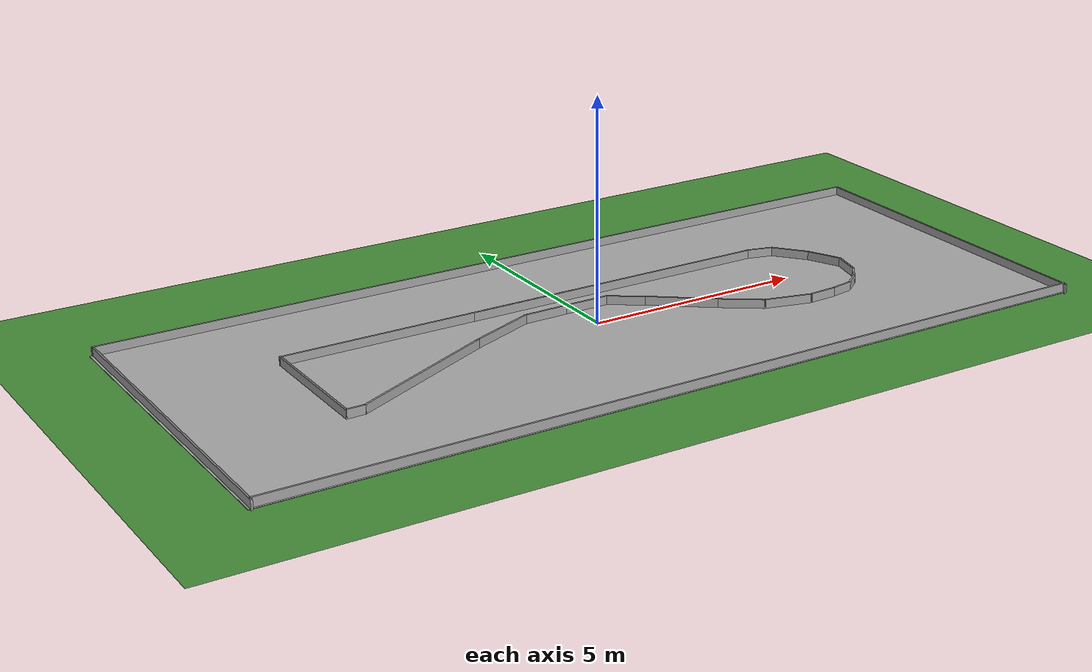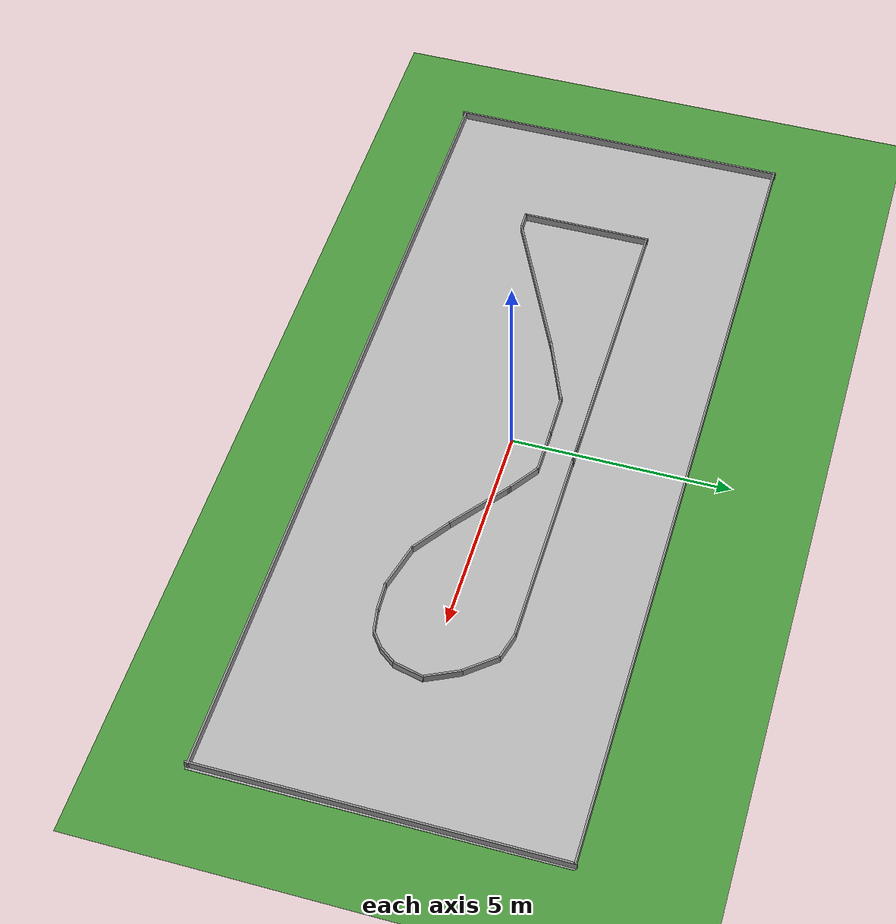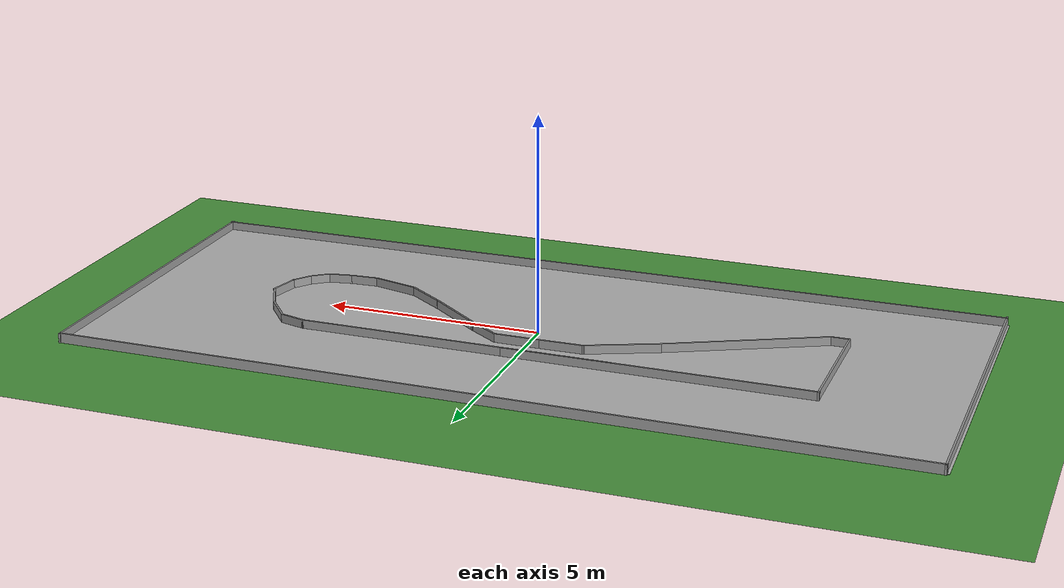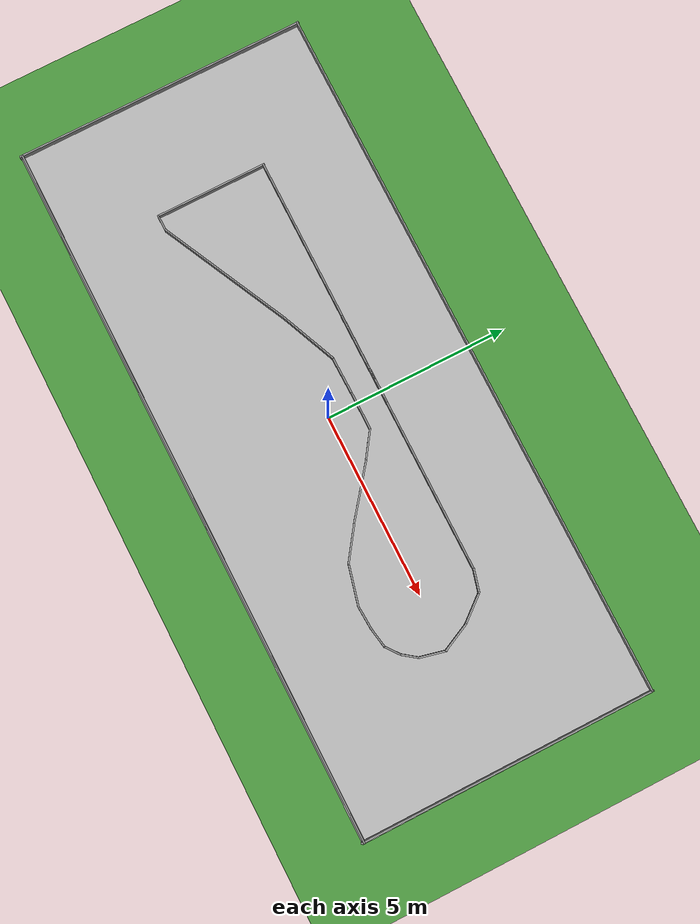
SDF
<sdf version="1.5">
 <world name="default">
  <light name="sun" type="directional">
   <cast_shadows>0</cast_shadows>
   <pose>0 0 10 0 -0 0</pose>
   <diffuse>0.8 0.8 0.8 1</diffuse>
   <specular>0.2 0.2 0.2 1</specular>
   <attenuation>
    <range>1000</range>
    <constant>0.9</constant>
    <linear>0.01</linear>
    <quadratic>0.001</quadratic>
   </attenuation>
   <direction>-0.5 0.1 -0.9</direction>
  </light>
  <scene>
   <sky><clouds><speed>1</speed></clouds></sky>
   <ambient>0.4 0.4 0.4 1</ambient>
   <background>0.7 0.7 0.7 1</background>
   <shadows>1</shadows>
  </scene>
  <physics name="default_physics" default="0" type="ode">
   <real_time_update_rate>1000</real_time_update_rate>
   <ode>
    <solver>
     <type>quick</type>
     <iters>70</iters>
     <sor>1.3</sor>
     <use_dynamic_moi_rescaling>0</use_dynamic_moi_rescaling>
    </solver>
    <constraints>
     <cfm>0</cfm>
     <erp>0.2</erp>
     <contact_max_correcting_vel>100</contact_max_correcting_vel>
     <contact_surface_layer>0.001</contact_surface_layer>
    </constraints>
   </ode>
   <max_step_size>0.001</max_step_size>
   <real_time_factor>1</real_time_factor>
  </physics>
  <scene><ambient>0.4 0.4 0.4 1</ambient><background>0.7 0.7 0.7 1</background><shadows>1</shadows></scene>
  <spherical_coordinates>
   <surface_model>EARTH_WGS84</surface_model>
   <latitude_deg>0</latitude_deg>
   <longitude_deg>0</longitude_deg>
   <elevation>0</elevation>
   <heading_deg>0</heading_deg>
  </spherical_coordinates>
  <model name="ground_grass">
   <static>1</static>
   <link name="ground_grass">
    <collision name="collision">
     <geometry><plane><normal>0 0 1</normal><size>50 50</size></plane></geometry>
     <surface><friction><ode><mu>100</mu><mu2>50</mu2></ode></friction></surface>
    </collision>
    <visual name="visual_ground">
     <cast_shadows>0</cast_shadows>
     <pose>0 0 0.005 0 -0 0</pose>
     <geometry><plane><normal>0 0 1</normal><size>50 50</size></plane></geometry>
     <material>
      <script>
       <uri>model://ground_grass/materials/scripts</uri>
       <uri>model://ground_grass/materials/textures</uri>
       <name>Floor/Grass</name>
      </script>
     </material>
    </visual>
    <velocity_decay><linear>0</linear><angular>0</angular></velocity_decay>
   </link>
  </model>
  <model name="ucsd_track_v1">
   <static>1</static>
   <link name="link_track">
    <collision name="collision">
     <geometry><plane><normal>0 0 1</normal><size>19.431 8.0264</size></plane></geometry>
     <surface><friction><ode><mu>100</mu><mu2>50</mu2></ode></friction></surface>
    </collision>
    <visual name="visual_ground">
     <cast_shadows>0</cast_shadows>
     <pose>0 0 0.005 0 -0 0</pose>
     <geometry><plane><normal>0 0 1</normal><size>19.431 8.0264</size></plane></geometry>
     <material>
      <script>
       <uri>model://ucsd_track_v1/materials/scripts</uri>
       <uri>model://ucsd_track_v1/materials/textures</uri>
       <name>Floor/Image</name>
      </script>
     </material>
    </visual>
    <velocity_decay><linear>0</linear><angular>0</angular></velocity_decay>
   </link>
   <pose>0 0 0.001 0 -0 0</pose>
  </model>
  <gravity>0 0 -9.8</gravity>
  <magnetic_field>6e-06 2.3e-05 -4.2e-05</magnetic_field>
  <atmosphere type="adiabatic"/>
  <model name="grey_wall_3">
   <link name="link">
    <pose>0.713484 -0.011654 1.4 0 -0 0</pose>
    <inertial>
     <inertia><ixx>nan</ixx><ixy>0</ixy><ixz>0</ixz><iyy>nan</iyy><iyz>0</iyz><izz>nan</izz></inertia>
     <mass>0</mass>
    </inertial>
    <visual name="visual">
     <cast_shadows>0</cast_shadows>
     <geometry><box><size>19.3332 0.043266 0.226147</size></box></geometry>
     <material>
      <script>
       <uri>model://grey_wall/materials/scripts</uri>
       <uri>model://grey_wall/materials/textures</uri>
       <name>vrc/grey_wall</name>
      </script>
      <ambient>1 1 1 1</ambient>
      <diffuse>1 1 1 1</diffuse>
      <specular>0 0 0 1</specular>
      <emissive>0 0 0 1</emissive>
     </material>
    </visual>
    <collision name="collision">
     <geometry><box><size>19.3332 0.043266 0.226147</size></box></geometry>
     <surface>
      <friction>
       <ode><mu>1</mu><mu2>1</mu2><fdir1>0 0 0</fdir1><slip1>0</slip1><slip2>0</slip2></ode>
       <torsional>
        <coefficient>1</coefficient>
        <patch_radius>0</patch_radius>
        <surface_radius>0</surface_radius>
        <use_patch_radius>1</use_patch_radius>
        <ode><slip>0</slip></ode>
       </torsional>
      </friction>
      <bounce><restitution_coefficient>0</restitution_coefficient><threshold>1e+06</threshold></bounce>
      <contact>
       <collide_without_contact>0</collide_without_contact>
       <collide_without_contact_bitmask>1</collide_without_contact_bitmask>
       <collide_bitmask>1</collide_bitmask>
       <ode>
        <soft_cfm>0</soft_cfm>
        <soft_erp>0.2</soft_erp>
        <kp>1e+13</kp>
        <kd>1</kd>
        <max_vel>0.01</max_vel>
        <min_depth>0</min_depth>
       </ode>
       <bullet>
        <split_impulse>1</split_impulse>
        <split_impulse_penetration_threshold>-0.01</split_impulse_penetration_threshold>
        <soft_cfm>0</soft_cfm>
        <soft_erp>0.2</soft_erp>
        <kp>1e+13</kp>
        <kd>1</kd>
       </bullet>
      </contact>
     </surface>
    </collision>
   </link>
   <static>1</static>
   <pose>-0.716038 4.0109 -1.30508 0 -0 0</pose>
  </model>
  <model name="grey_wall_4">
   <link name="link">
    <pose>0.713484 -0.011654 1.4 0 -0 0</pose>
    <inertial>
     <inertia><ixx>nan</ixx><ixy>0</ixy><ixz>0</ixz><iyy>nan</iyy><iyz>0</iyz><izz>nan</izz></inertia>
     <mass>0</mass>
    </inertial>
    <visual name="visual">
     <cast_shadows>0</cast_shadows>
     <geometry><box><size>19.3332 0.043266 0.226147</size></box></geometry>
     <material>
      <script>
       <uri>model://grey_wall/materials/scripts</uri>
       <uri>model://grey_wall/materials/textures</uri>
       <name>vrc/grey_wall</name>
      </script>
      <ambient>1 1 1 1</ambient>
      <diffuse>1 1 1 1</diffuse>
      <specular>0 0 0 1</specular>
      <emissive>0 0 0 1</emissive>
     </material>
    </visual>
    <collision name="collision">
     <geometry><box><size>19.3332 0.043266 0.226147</size></box></geometry>
     <surface>
      <friction>
       <ode><mu>1</mu><mu2>1</mu2><fdir1>0 0 0</fdir1><slip1>0</slip1><slip2>0</slip2></ode>
       <torsional>
        <coefficient>1</coefficient>
        <patch_radius>0</patch_radius>
        <surface_radius>0</surface_radius>
        <use_patch_radius>1</use_patch_radius>
        <ode><slip>0</slip></ode>
       </torsional>
      </friction>
      <bounce><restitution_coefficient>0</restitution_coefficient><threshold>1e+06</threshold></bounce>
      <contact>
       <collide_without_contact>0</collide_without_contact>
       <collide_without_contact_bitmask>1</collide_without_contact_bitmask>
       <collide_bitmask>1</collide_bitmask>
       <ode>
        <soft_cfm>0</soft_cfm>
        <soft_erp>0.2</soft_erp>
        <kp>1e+13</kp>
        <kd>1</kd>
        <max_vel>0.01</max_vel>
        <min_depth>0</min_depth>
       </ode>
       <bullet>
        <split_impulse>1</split_impulse>
        <split_impulse_penetration_threshold>-0.01</split_impulse_penetration_threshold>
        <soft_cfm>0</soft_cfm>
        <soft_erp>0.2</soft_erp>
        <kp>1e+13</kp>
        <kd>1</kd>
       </bullet>
      </contact>
     </surface>
    </collision>
   </link>
   <static>1</static>
   <pose>-0.701966 -3.93959 -1.30508 0 -0 0</pose>
  </model>
  <model name="grey_wall_5">
   <link name="link">
    <pose>-0.467859 -0.097477 1.4 0 -0 0.009516</pose>
    <inertial>
     <inertia><ixx>nan</ixx><ixy>0</ixy><ixz>0</ixz><iyy>nan</iyy><iyz>0</iyz><izz>nan</izz></inertia>
     <mass>0</mass>
    </inertial>
    <visual name="visual">
     <cast_shadows>0</cast_shadows>
     <geometry><box><size>8.07319 0.043266 0.226147</size></box></geometry>
     <material>
      <script>
       <uri>model://grey_wall/materials/scripts</uri>
       <uri>model://grey_wall/materials/textures</uri>
       <name>vrc/grey_wall</name>
      </script>
      <ambient>1 1 1 1</ambient>
      <diffuse>1 1 1 1</diffuse>
      <specular>0 0 0 1</specular>
      <emissive>0 0 0 1</emissive>
     </material>
    </visual>
    <collision name="collision">
     <geometry><box><size>8.07319 0.043266 0.226147</size></box></geometry>
     <surface>
      <friction>
       <ode><mu>1</mu><mu2>1</mu2><fdir1>0 0 0</fdir1><slip1>0</slip1><slip2>0</slip2></ode>
       <torsional>
        <coefficient>1</coefficient>
        <patch_radius>0</patch_radius>
        <surface_radius>0</surface_radius>
        <use_patch_radius>1</use_patch_radius>
        <ode><slip>0</slip></ode>
       </torsional>
      </friction>
      <bounce><restitution_coefficient>0</restitution_coefficient><threshold>1e+06</threshold></bounce>
      <contact>
       <collide_without_contact>0</collide_without_contact>
       <collide_without_contact_bitmask>1</collide_without_contact_bitmask>
       <collide_bitmask>1</collide_bitmask>
       <ode>
        <soft_cfm>0</soft_cfm>
        <soft_erp>0.2</soft_erp>
        <kp>1e+13</kp>
        <kd>1</kd>
        <max_vel>0.01</max_vel>
        <min_depth>0</min_depth>
       </ode>
       <bullet>
        <split_impulse>1</split_impulse>
        <split_impulse_penetration_threshold>-0.01</split_impulse_penetration_threshold>
        <soft_cfm>0</soft_cfm>
        <soft_erp>0.2</soft_erp>
        <kp>1e+13</kp>
        <kd>1</kd>
       </bullet>
      </contact>
     </surface>
    </collision>
   </link>
   <static>1</static>
   <pose>-9.73386 0.474907 -1.30963 0 -0 1.55954</pose>
  </model>
  <model name="grey_wall_6">
   <link name="link">
    <pose>-0.467859 -0.097477 1.4 0 -0 0.009516</pose>
    <inertial>
     <inertia><ixx>nan</ixx><ixy>0</ixy><ixz>0</ixz><iyy>nan</iyy><iyz>0</iyz><izz>nan</izz></inertia>
     <mass>0</mass>
    </inertial>
    <visual name="visual">
     <cast_shadows>0</cast_shadows>
     <geometry><box><size>8.07319 0.043266 0.226147</size></box></geometry>
     <material>
      <script>
       <uri>model://grey_wall/materials/scripts</uri>
       <uri>model://grey_wall/materials/textures</uri>
       <name>vrc/grey_wall</name>
      </script>
      <ambient>1 1 1 1</ambient>
      <diffuse>1 1 1 1</diffuse>
      <specular>0 0 0 1</specular>
      <emissive>0 0 0 1</emissive>
     </material>
    </visual>
    <collision name="collision">
     <geometry><box><size>8.07319 0.043266 0.226147</size></box></geometry>
     <surface>
      <friction>
       <ode><mu>1</mu><mu2>1</mu2><fdir1>0 0 0</fdir1><slip1>0</slip1><slip2>0</slip2></ode>
       <torsional>
        <coefficient>1</coefficient>
        <patch_radius>0</patch_radius>
        <surface_radius>0</surface_radius>
        <use_patch_radius>1</use_patch_radius>
        <ode><slip>0</slip></ode>
       </torsional>
      </friction>
      <bounce><restitution_coefficient>0</restitution_coefficient><threshold>1e+06</threshold></bounce>
      <contact>
       <collide_without_contact>0</collide_without_contact>
       <collide_without_contact_bitmask>1</collide_without_contact_bitmask>
       <collide_bitmask>1</collide_bitmask>
       <ode>
        <soft_cfm>0</soft_cfm>
        <soft_erp>0.2</soft_erp>
        <kp>1e+13</kp>
        <kd>1</kd>
        <max_vel>0.01</max_vel>
        <min_depth>0</min_depth>
       </ode>
       <bullet>
        <split_impulse>1</split_impulse>
        <split_impulse_penetration_threshold>-0.01</split_impulse_penetration_threshold>
        <soft_cfm>0</soft_cfm>
        <soft_erp>0.2</soft_erp>
        <kp>1e+13</kp>
        <kd>1</kd>
       </bullet>
      </contact>
     </surface>
    </collision>
   </link>
   <static>1</static>
   <pose>9.5596 0.474996 -1.30963 0 -0 1.55954</pose>
  </model>
  <model name="grey_wall_t_17">
   <link name="link">
    <pose>-0.003902 -0.430375 1.4 0 -0 0</pose>
    <inertial>
     <inertia><ixx>nan</ixx><ixy>0</ixy><ixz>0</ixz><iyy>nan</iyy><iyz>0</iyz><izz>nan</izz></inertia>
     <mass>0</mass>
    </inertial>
    <visual name="visual">
     <cast_shadows>0</cast_shadows>
     <geometry><box><size>7.20978 0.043266 0.226147</size></box></geometry>
     <material>
      <script>
       <uri>model://grey_wall/materials/scripts</uri>
       <uri>model://grey_wall/materials/textures</uri>
       <name>vrc/grey_wall</name>
      </script>
      <ambient>1 1 1 1</ambient>
      <diffuse>1 1 1 1</diffuse>
      <specular>0 0 0 1</specular>
      <emissive>0 0 0 1</emissive>
     </material>
    </visual>
    <collision name="collision">
     <geometry><box><size>7.20978 0.043266 0.226147</size></box></geometry>
     <surface>
      <friction>
       <ode><mu>1</mu><mu2>1</mu2><fdir1>0 0 0</fdir1><slip1>0</slip1><slip2>0</slip2></ode>
       <torsional>
        <coefficient>1</coefficient>
        <patch_radius>0</patch_radius>
        <surface_radius>0</surface_radius>
        <use_patch_radius>1</use_patch_radius>
        <ode><slip>0</slip></ode>
       </torsional>
      </friction>
      <bounce><restitution_coefficient>0</restitution_coefficient><threshold>1e+06</threshold></bounce>
      <contact>
       <collide_without_contact>0</collide_without_contact>
       <collide_without_contact_bitmask>1</collide_without_contact_bitmask>
       <collide_bitmask>1</collide_bitmask>
       <ode>
        <soft_cfm>0</soft_cfm>
        <soft_erp>0.2</soft_erp>
        <kp>1e+13</kp>
        <kd>1</kd>
        <max_vel>0.01</max_vel>
        <min_depth>0</min_depth>
       </ode>
       <bullet>
        <split_impulse>1</split_impulse>
        <split_impulse_penetration_threshold>-0.01</split_impulse_penetration_threshold>
        <soft_cfm>0</soft_cfm>
        <soft_erp>0.2</soft_erp>
        <kp>1e+13</kp>
        <kd>1</kd>
       </bullet>
      </contact>
     </surface>
    </collision>
   </link>
   <static>1</static>
   <pose>1.44796 1.9115 -1.30759 0 -0 0</pose>
  </model>
  <model name="grey_wall_t_16_0">
   <link name="link">
    <pose>-0.003115 -0.433128 1.4 0 -0 0</pose>
    <inertial>
     <inertia><ixx>nan</ixx><ixy>0</ixy><ixz>0</ixz><iyy>nan</iyy><iyz>0</iyz><izz>nan</izz></inertia>
     <mass>0</mass>
    </inertial>
    <visual name="visual">
     <cast_shadows>0</cast_shadows>
     <geometry><box><size>6.98046 0.043266 0.226147</size></box></geometry>
     <material>
      <script>
       <uri>model://grey_wall/materials/scripts</uri>
       <uri>model://grey_wall/materials/textures</uri>
       <name>vrc/grey_wall</name>
      </script>
      <ambient>1 1 1 1</ambient>
      <diffuse>1 1 1 1</diffuse>
      <specular>0 0 0 1</specular>
      <emissive>0 0 0 1</emissive>
     </material>
    </visual>
    <collision name="collision">
     <geometry><box><size>6.98046 0.043266 0.226147</size></box></geometry>
     <surface>
      <friction>
       <ode><mu>1</mu><mu2>1</mu2><fdir1>0 0 0</fdir1><slip1>0</slip1><slip2>0</slip2></ode>
       <torsional>
        <coefficient>1</coefficient>
        <patch_radius>0</patch_radius>
        <surface_radius>0</surface_radius>
        <use_patch_radius>1</use_patch_radius>
        <ode><slip>0</slip></ode>
       </torsional>
      </friction>
      <bounce><restitution_coefficient>0</restitution_coefficient><threshold>1e+06</threshold></bounce>
      <contact>
       <collide_without_contact>0</collide_without_contact>
       <collide_without_contact_bitmask>1</collide_without_contact_bitmask>
       <collide_bitmask>1</collide_bitmask>
       <ode>
        <soft_cfm>0</soft_cfm>
        <soft_erp>0.2</soft_erp>
        <kp>1e+13</kp>
        <kd>1</kd>
        <max_vel>0.01</max_vel>
        <min_depth>0</min_depth>
       </ode>
       <bullet>
        <split_impulse>1</split_impulse>
        <split_impulse_penetration_threshold>-0.01</split_impulse_penetration_threshold>
        <soft_cfm>0</soft_cfm>
        <soft_erp>0.2</soft_erp>
        <kp>1e+13</kp>
        <kd>1</kd>
       </bullet>
      </contact>
     </surface>
    </collision>
   </link>
   <static>1</static>
   <pose>-3.148 1.91993 -1.30759 0 -0 0</pose>
  </model>
  <model name="grey_wall_t_54">
   <link name="link">
    <pose>-0.069188 -0.423795 1.4 0 0 -0.260101</pose>
    <inertial>
     <inertia><ixx>nan</ixx><ixy>0</ixy><ixz>0</ixz><iyy>nan</iyy><iyz>0</iyz><izz>nan</izz></inertia>
     <mass>0</mass>
    </inertial>
    <visual name="visual">
     <cast_shadows>0</cast_shadows>
     <geometry><box><size>0.633914 0.043266 0.226147</size></box></geometry>
     <material>
      <script>
       <uri>model://grey_wall/materials/scripts</uri>
       <uri>model://grey_wall/materials/textures</uri>
       <name>vrc/grey_wall</name>
      </script>
      <ambient>1 1 1 1</ambient>
      <diffuse>1 1 1 1</diffuse>
      <specular>0 0 0 1</specular>
      <emissive>0 0 0 1</emissive>
     </material>
    </visual>
    <collision name="collision">
     <geometry><box><size>0.633914 0.043266 0.226147</size></box></geometry>
     <surface>
      <friction>
       <ode><mu>1</mu><mu2>1</mu2><fdir1>0 0 0</fdir1><slip1>0</slip1><slip2>0</slip2></ode>
       <torsional>
        <coefficient>1</coefficient>
        <patch_radius>0</patch_radius>
        <surface_radius>0</surface_radius>
        <use_patch_radius>1</use_patch_radius>
        <ode><slip>0</slip></ode>
       </torsional>
      </friction>
      <bounce><restitution_coefficient>0</restitution_coefficient><threshold>1e+06</threshold></bounce>
      <contact>
       <collide_without_contact>0</collide_without_contact>
       <collide_without_contact_bitmask>1</collide_without_contact_bitmask>
       <collide_bitmask>1</collide_bitmask>
       <ode>
        <soft_cfm>0</soft_cfm>
        <soft_erp>0.2</soft_erp>
        <kp>1e+13</kp>
        <kd>1</kd>
        <max_vel>0.01</max_vel>
        <min_depth>0</min_depth>
       </ode>
       <bullet>
        <split_impulse>1</split_impulse>
        <split_impulse_penetration_threshold>-0.01</split_impulse_penetration_threshold>
        <soft_cfm>0</soft_cfm>
        <soft_erp>0.2</soft_erp>
        <kp>1e+13</kp>
        <kd>1</kd>
       </bullet>
      </contact>
     </surface>
    </collision>
   </link>
   <static>1</static>
   <pose>5.38328 1.83136 -1.30469 0 -0 0</pose>
  </model>
  <model name="grey_wall_t_50_1">
   <link name="link">
    <pose>-0.30363 -0.806577 1.4 0 0 -0.884632</pose>
    <inertial>
     <inertia><ixx>nan</ixx><ixy>0</ixy><ixz>0</ixz><iyy>nan</iyy><iyz>0</iyz><izz>nan</izz></inertia>
     <mass>0</mass>
    </inertial>
    <visual name="visual">
     <cast_shadows>0</cast_shadows>
     <geometry><box><size>0.86914 0.043266 0.226147</size></box></geometry>
     <material>
      <script>
       <uri>model://grey_wall/materials/scripts</uri>
       <uri>model://grey_wall/materials/textures</uri>
       <name>vrc/grey_wall</name>
      </script>
      <ambient>1 1 1 1</ambient>
      <diffuse>1 1 1 1</diffuse>
      <specular>0 0 0 1</specular>
      <emissive>0 0 0 1</emissive>
     </material>
    </visual>
    <collision name="collision">
     <geometry><box><size>0.86914 0.043266 0.226147</size></box></geometry>
     <surface>
      <friction>
       <ode><mu>1</mu><mu2>1</mu2><fdir1>0 0 0</fdir1><slip1>0</slip1><slip2>0</slip2></ode>
       <torsional>
        <coefficient>1</coefficient>
        <patch_radius>0</patch_radius>
        <surface_radius>0</surface_radius>
        <use_patch_radius>1</use_patch_radius>
        <ode><slip>0</slip></ode>
       </torsional>
      </friction>
      <bounce><restitution_coefficient>0</restitution_coefficient><threshold>1e+06</threshold></bounce>
      <contact>
       <collide_without_contact>0</collide_without_contact>
       <collide_without_contact_bitmask>1</collide_without_contact_bitmask>
       <collide_bitmask>1</collide_bitmask>
       <ode>
        <soft_cfm>0</soft_cfm>
        <soft_erp>0.2</soft_erp>
        <kp>1e+13</kp>
        <kd>1</kd>
        <max_vel>0.01</max_vel>
        <min_depth>0</min_depth>
       </ode>
       <bullet>
        <split_impulse>1</split_impulse>
        <split_impulse_penetration_threshold>-0.01</split_impulse_penetration_threshold>
        <soft_cfm>0</soft_cfm>
        <soft_erp>0.2</soft_erp>
        <kp>1e+13</kp>
        <kd>1</kd>
       </bullet>
      </contact>
     </surface>
    </collision>
   </link>
   <static>1</static>
   <pose>6.17777 1.80909 -1.30539 0 -0 0</pose>
  </model>
  <model name="grey_wall_t_62">
   <link name="link">
    <pose>-0.190228 0.496197 1.4 0 -0 0.934983</pose>
    <inertial>
     <inertia><ixx>nan</ixx><ixy>0</ixy><ixz>0</ixz><iyy>nan</iyy><iyz>0</iyz><izz>nan</izz></inertia>
     <mass>0</mass>
    </inertial>
    <visual name="visual">
     <cast_shadows>0</cast_shadows>
     <geometry><box><size>0.478375 0.043266 0.226147</size></box></geometry>
     <material>
      <script>
       <uri>model://grey_wall/materials/scripts</uri>
       <uri>model://grey_wall/materials/textures</uri>
       <name>vrc/grey_wall</name>
      </script>
      <ambient>1 1 1 1</ambient>
      <diffuse>1 1 1 1</diffuse>
      <specular>0 0 0 1</specular>
      <emissive>0 0 0 1</emissive>
     </material>
    </visual>
    <collision name="collision">
     <geometry><box><size>0.478375 0.043266 0.226147</size></box></geometry>
     <surface>
      <friction>
       <ode><mu>1</mu><mu2>1</mu2><fdir1>0 0 0</fdir1><slip1>0</slip1><slip2>0</slip2></ode>
       <torsional>
        <coefficient>1</coefficient>
        <patch_radius>0</patch_radius>
        <surface_radius>0</surface_radius>
        <use_patch_radius>1</use_patch_radius>
        <ode><slip>0</slip></ode>
       </torsional>
      </friction>
      <bounce><restitution_coefficient>0</restitution_coefficient><threshold>1e+06</threshold></bounce>
      <contact>
       <collide_without_contact>0</collide_without_contact>
       <collide_without_contact_bitmask>1</collide_without_contact_bitmask>
       <collide_bitmask>1</collide_bitmask>
       <ode>
        <soft_cfm>0</soft_cfm>
        <soft_erp>0.2</soft_erp>
        <kp>1e+13</kp>
        <kd>1</kd>
        <max_vel>0.01</max_vel>
        <min_depth>0</min_depth>
       </ode>
       <bullet>
        <split_impulse>1</split_impulse>
        <split_impulse_penetration_threshold>-0.01</split_impulse_penetration_threshold>
        <soft_cfm>0</soft_cfm>
        <soft_erp>0.2</soft_erp>
        <kp>1e+13</kp>
        <kd>1</kd>
       </bullet>
      </contact>
     </surface>
    </collision>
   </link>
   <static>1</static>
   <pose>6.39158 -1.4103 -1.30539 0 -0 0</pose>
  </model>
  <model name="grey_wall_t_56_0">
   <link name="link">
    <pose>0.204219 0.625513 1.4 0 -0 0.658718</pose>
    <inertial>
     <inertia><ixx>nan</ixx><ixy>0</ixy><ixz>0</ixz><iyy>nan</iyy><iyz>0</iyz><izz>nan</izz></inertia>
     <mass>0</mass>
    </inertial>
    <visual name="visual">
     <cast_shadows>0</cast_shadows>
     <geometry><box><size>0.46511 0.043266 0.226147</size></box></geometry>
     <material>
      <script>
       <uri>model://grey_wall/materials/scripts</uri>
       <uri>model://grey_wall/materials/textures</uri>
       <name>vrc/grey_wall</name>
      </script>
      <ambient>1 1 1 1</ambient>
      <diffuse>1 1 1 1</diffuse>
      <specular>0 0 0 1</specular>
      <emissive>0 0 0 1</emissive>
     </material>
    </visual>
    <collision name="collision">
     <geometry><box><size>0.46511 0.043266 0.226147</size></box></geometry>
     <surface>
      <friction>
       <ode><mu>1</mu><mu2>1</mu2><fdir1>0 0 0</fdir1><slip1>0</slip1><slip2>0</slip2></ode>
       <torsional>
        <coefficient>1</coefficient>
        <patch_radius>0</patch_radius>
        <surface_radius>0</surface_radius>
        <use_patch_radius>1</use_patch_radius>
        <ode><slip>0</slip></ode>
       </torsional>
      </friction>
      <bounce><restitution_coefficient>0</restitution_coefficient><threshold>1e+06</threshold></bounce>
      <contact>
       <collide_without_contact>0</collide_without_contact>
       <collide_without_contact_bitmask>1</collide_without_contact_bitmask>
       <collide_bitmask>1</collide_bitmask>
       <ode>
        <soft_cfm>0</soft_cfm>
        <soft_erp>0.2</soft_erp>
        <kp>1e+13</kp>
        <kd>1</kd>
        <max_vel>0.01</max_vel>
        <min_depth>0</min_depth>
       </ode>
       <bullet>
        <split_impulse>1</split_impulse>
        <split_impulse_penetration_threshold>-0.01</split_impulse_penetration_threshold>
        <soft_cfm>0</soft_cfm>
        <soft_erp>0.2</soft_erp>
        <kp>1e+13</kp>
        <kd>1</kd>
       </bullet>
      </contact>
     </surface>
    </collision>
   </link>
   <static>1</static>
   <pose>5.69053 -1.8541 -1.30539 0 -0 0</pose>
  </model>
  <model name="grey_wall_t_59_0">
   <link name="link">
    <pose>-0.062392 0.638096 1.4 0 0 -0.246763</pose>
    <inertial>
     <inertia><ixx>nan</ixx><ixy>0</ixy><ixz>0</ixz><iyy>nan</iyy><iyz>0</iyz><izz>nan</izz></inertia>
     <mass>0</mass>
    </inertial>
    <visual name="visual">
     <cast_shadows>0</cast_shadows>
     <geometry><box><size>1.12853 0.043266 0.226147</size></box></geometry>
     <material>
      <script>
       <uri>model://grey_wall/materials/scripts</uri>
       <uri>model://grey_wall/materials/textures</uri>
       <name>vrc/grey_wall</name>
      </script>
      <ambient>1 1 1 1</ambient>
      <diffuse>1 1 1 1</diffuse>
      <specular>0 0 0 1</specular>
      <emissive>0 0 0 1</emissive>
     </material>
    </visual>
    <collision name="collision">
     <geometry><box><size>1.12853 0.043266 0.226147</size></box></geometry>
     <surface>
      <friction>
       <ode><mu>1</mu><mu2>1</mu2><fdir1>0 0 0</fdir1><slip1>0</slip1><slip2>0</slip2></ode>
       <torsional>
        <coefficient>1</coefficient>
        <patch_radius>0</patch_radius>
        <surface_radius>0</surface_radius>
        <use_patch_radius>1</use_patch_radius>
        <ode><slip>0</slip></ode>
       </torsional>
      </friction>
      <bounce><restitution_coefficient>0</restitution_coefficient><threshold>1e+06</threshold></bounce>
      <contact>
       <collide_without_contact>0</collide_without_contact>
       <collide_without_contact_bitmask>1</collide_without_contact_bitmask>
       <collide_bitmask>1</collide_bitmask>
       <ode>
        <soft_cfm>0</soft_cfm>
        <soft_erp>0.2</soft_erp>
        <kp>1e+13</kp>
        <kd>1</kd>
        <max_vel>0.01</max_vel>
        <min_depth>0</min_depth>
       </ode>
       <bullet>
        <split_impulse>1</split_impulse>
        <split_impulse_penetration_threshold>-0.01</split_impulse_penetration_threshold>
        <soft_cfm>0</soft_cfm>
        <soft_erp>0.2</soft_erp>
        <kp>1e+13</kp>
        <kd>1</kd>
       </bullet>
      </contact>
     </surface>
    </collision>
   </link>
   <static>1</static>
   <pose>4.09311 -1.99771 -1.30469 0 -0 0</pose>
  </model>
  <model name="grey_wall_t_58_0">
   <link name="link">
    <pose>-0.079279 0.522841 1.4 0 -0 0.173281</pose>
    <inertial>
     <inertia><ixx>nan</ixx><ixy>0</ixy><ixz>0</ixz><iyy>nan</iyy><iyz>0</iyz><izz>nan</izz></inertia>
     <mass>0</mass>
    </inertial>
    <visual name="visual">
     <cast_shadows>0</cast_shadows>
     <geometry><box><size>0.553723 0.043266 0.226147</size></box></geometry>
     <material>
      <script>
       <uri>model://grey_wall/materials/scripts</uri>
       <uri>model://grey_wall/materials/textures</uri>
       <name>vrc/grey_wall</name>
      </script>
      <ambient>1 1 1 1</ambient>
      <diffuse>1 1 1 1</diffuse>
      <specular>0 0 0 1</specular>
      <emissive>0 0 0 1</emissive>
     </material>
    </visual>
    <collision name="collision">
     <geometry><box><size>0.553723 0.043266 0.226147</size></box></geometry>
     <surface>
      <friction>
       <ode><mu>1</mu><mu2>1</mu2><fdir1>0 0 0</fdir1><slip1>0</slip1><slip2>0</slip2></ode>
       <torsional>
        <coefficient>1</coefficient>
        <patch_radius>0</patch_radius>
        <surface_radius>0</surface_radius>
        <use_patch_radius>1</use_patch_radius>
        <ode><slip>0</slip></ode>
       </torsional>
      </friction>
      <bounce><restitution_coefficient>0</restitution_coefficient><threshold>1e+06</threshold></bounce>
      <contact>
       <collide_without_contact>0</collide_without_contact>
       <collide_without_contact_bitmask>1</collide_without_contact_bitmask>
       <collide_bitmask>1</collide_bitmask>
       <ode>
        <soft_cfm>0</soft_cfm>
        <soft_erp>0.2</soft_erp>
        <kp>1e+13</kp>
        <kd>1</kd>
        <max_vel>0.01</max_vel>
        <min_depth>0</min_depth>
       </ode>
       <bullet>
        <split_impulse>1</split_impulse>
        <split_impulse_penetration_threshold>-0.01</split_impulse_penetration_threshold>
        <soft_cfm>0</soft_cfm>
        <soft_erp>0.2</soft_erp>
        <kp>1e+13</kp>
        <kd>1</kd>
       </bullet>
      </contact>
     </surface>
    </collision>
   </link>
   <static>1</static>
   <pose>5.53718 -1.934 -1.30539 0 -0 0</pose>
  </model>
  <model name="grey_wall_t_57_0">
   <link name="link">
    <pose>0.288414 0.623904 1.4 0 -0 0.050279</pose>
    <inertial>
     <inertia><ixx>nan</ixx><ixy>0</ixy><ixz>0</ixz><iyy>nan</iyy><iyz>0</iyz><izz>nan</izz></inertia>
     <mass>0</mass>
    </inertial>
    <visual name="visual">
     <cast_shadows>0</cast_shadows>
     <geometry><box><size>0.678086 0.043266 0.226147</size></box></geometry>
     <material>
      <script>
       <uri>model://grey_wall/materials/scripts</uri>
       <uri>model://grey_wall/materials/textures</uri>
       <name>vrc/grey_wall</name>
      </script>
      <ambient>1 1 1 1</ambient>
      <diffuse>1 1 1 1</diffuse>
      <specular>0 0 0 1</specular>
      <emissive>0 0 0 1</emissive>
     </material>
    </visual>
    <collision name="collision">
     <geometry><box><size>0.678086 0.043266 0.226147</size></box></geometry>
     <surface>
      <friction>
       <ode><mu>1</mu><mu2>1</mu2><fdir1>0 0 0</fdir1><slip1>0</slip1><slip2>0</slip2></ode>
       <torsional>
        <coefficient>1</coefficient>
        <patch_radius>0</patch_radius>
        <surface_radius>0</surface_radius>
        <use_patch_radius>1</use_patch_radius>
        <ode><slip>0</slip></ode>
       </torsional>
      </friction>
      <bounce><restitution_coefficient>0</restitution_coefficient><threshold>1e+06</threshold></bounce>
      <contact>
       <collide_without_contact>0</collide_without_contact>
       <collide_without_contact_bitmask>1</collide_without_contact_bitmask>
       <collide_bitmask>1</collide_bitmask>
       <ode>
        <soft_cfm>0</soft_cfm>
        <soft_erp>0.2</soft_erp>
        <kp>1e+13</kp>
        <kd>1</kd>
        <max_vel>0.01</max_vel>
        <min_depth>0</min_depth>
       </ode>
       <bullet>
        <split_impulse>1</split_impulse>
        <split_impulse_penetration_threshold>-0.01</split_impulse_penetration_threshold>
        <soft_cfm>0</soft_cfm>
        <soft_erp>0.2</soft_erp>
        <kp>1e+13</kp>
        <kd>1</kd>
       </bullet>
      </contact>
     </surface>
    </collision>
   </link>
   <static>1</static>
   <pose>4.58267 -2.09908 -1.30469 0 -0 0</pose>
  </model>
  <model name="grey_wall_t_31_1">
   <link name="link">
    <pose>-0.071356 0.584541 1.4 0 0 -0.613938</pose>
    <inertial>
     <inertia><ixx>nan</ixx><ixy>0</ixy><ixz>0</ixz><iyy>nan</iyy><iyz>0</iyz><izz>nan</izz></inertia>
     <mass>0</mass>
    </inertial>
    <visual name="visual">
     <cast_shadows>0</cast_shadows>
     <geometry><box><size>1.03803 0.043266 0.226147</size></box></geometry>
     <material>
      <script>
       <uri>model://grey_wall/materials/scripts</uri>
       <uri>model://grey_wall/materials/textures</uri>
       <name>vrc/grey_wall</name>
      </script>
      <ambient>1 1 1 1</ambient>
      <diffuse>1 1 1 1</diffuse>
      <specular>0 0 0 1</specular>
      <emissive>0 0 0 1</emissive>
     </material>
    </visual>
    <collision name="collision">
     <geometry><box><size>1.03803 0.043266 0.226147</size></box></geometry>
     <surface>
      <friction>
       <ode><mu>1</mu><mu2>1</mu2><fdir1>0 0 0</fdir1><slip1>0</slip1><slip2>0</slip2></ode>
       <torsional>
        <coefficient>1</coefficient>
        <patch_radius>0</patch_radius>
        <surface_radius>0</surface_radius>
        <use_patch_radius>1</use_patch_radius>
        <ode><slip>0</slip></ode>
       </torsional>
      </friction>
      <bounce><restitution_coefficient>0</restitution_coefficient><threshold>1e+06</threshold></bounce>
      <contact>
       <collide_without_contact>0</collide_without_contact>
       <collide_without_contact_bitmask>1</collide_without_contact_bitmask>
       <collide_bitmask>1</collide_bitmask>
       <ode>
        <soft_cfm>0</soft_cfm>
        <soft_erp>0.2</soft_erp>
        <kp>1e+13</kp>
        <kd>1</kd>
        <max_vel>0.01</max_vel>
        <min_depth>0</min_depth>
       </ode>
       <bullet>
        <split_impulse>1</split_impulse>
        <split_impulse_penetration_threshold>-0.01</split_impulse_penetration_threshold>
        <soft_cfm>0</soft_cfm>
        <soft_erp>0.2</soft_erp>
        <kp>1e+13</kp>
        <kd>1</kd>
       </bullet>
      </contact>
     </surface>
    </collision>
   </link>
   <static>1</static>
   <pose>3.16473 -1.52452 -1.30469 0 -0 0</pose>
  </model>
  <model name="grey_wall_t_28_1">
   <link name="link">
    <pose>0.11263 0.484703 1.4 0 0 -0.661754</pose>
    <inertial>
     <inertia><ixx>nan</ixx><ixy>0</ixy><ixz>0</ixz><iyy>nan</iyy><iyz>0</iyz><izz>nan</izz></inertia>
     <mass>0</mass>
    </inertial>
    <visual name="visual">
     <cast_shadows>0</cast_shadows>
     <geometry><box><size>1.62445 0.043266 0.226147</size></box></geometry>
     <material>
      <script>
       <uri>model://grey_wall/materials/scripts</uri>
       <uri>model://grey_wall/materials/textures</uri>
       <name>vrc/grey_wall</name>
      </script>
      <ambient>1 1 1 1</ambient>
      <diffuse>1 1 1 1</diffuse>
      <specular>0 0 0 1</specular>
      <emissive>0 0 0 1</emissive>
     </material>
    </visual>
    <collision name="collision">
     <geometry><box><size>1.62445 0.043266 0.226147</size></box></geometry>
     <surface>
      <friction>
       <ode><mu>1</mu><mu2>1</mu2><fdir1>0 0 0</fdir1><slip1>0</slip1><slip2>0</slip2></ode>
       <torsional>
        <coefficient>1</coefficient>
        <patch_radius>0</patch_radius>
        <surface_radius>0</surface_radius>
        <use_patch_radius>1</use_patch_radius>
        <ode><slip>0</slip></ode>
       </torsional>
      </friction>
      <bounce><restitution_coefficient>0</restitution_coefficient><threshold>1e+06</threshold></bounce>
      <contact>
       <collide_without_contact>0</collide_without_contact>
       <collide_without_contact_bitmask>1</collide_without_contact_bitmask>
       <collide_bitmask>1</collide_bitmask>
       <ode>
        <soft_cfm>0</soft_cfm>
        <soft_erp>0.2</soft_erp>
        <kp>1e+13</kp>
        <kd>1</kd>
        <max_vel>0.01</max_vel>
        <min_depth>0</min_depth>
       </ode>
       <bullet>
        <split_impulse>1</split_impulse>
        <split_impulse_penetration_threshold>-0.01</split_impulse_penetration_threshold>
        <soft_cfm>0</soft_cfm>
        <soft_erp>0.2</soft_erp>
        <kp>1e+13</kp>
        <kd>1</kd>
       </bullet>
      </contact>
     </surface>
    </collision>
   </link>
   <static>1</static>
   <pose>1.9243 -0.636533 -1.30469 0 -0 0</pose>
  </model>
  <model name="grey_wall_t_25_1">
   <link name="link">
    <pose>-0.011548 0.517445 1.4 0 -0 0.455224</pose>
    <inertial>
     <inertia><ixx>nan</ixx><ixy>0</ixy><ixz>0</ixz><iyy>nan</iyy><iyz>0</iyz><izz>nan</izz></inertia>
     <mass>0</mass>
    </inertial>
    <visual name="visual">
     <cast_shadows>0</cast_shadows>
     <geometry><box><size>3.81606 0.043266 0.226147</size></box></geometry>
     <material>
      <script>
       <uri>model://grey_wall/materials/scripts</uri>
       <uri>model://grey_wall/materials/textures</uri>
       <name>vrc/grey_wall</name>
      </script>
      <ambient>1 1 1 1</ambient>
      <diffuse>1 1 1 1</diffuse>
      <specular>0 0 0 1</specular>
      <emissive>0 0 0 1</emissive>
     </material>
    </visual>
    <collision name="collision">
     <geometry><box><size>3.81606 0.043266 0.226147</size></box></geometry>
     <surface>
      <friction>
       <ode><mu>1</mu><mu2>1</mu2><fdir1>0 0 0</fdir1><slip1>0</slip1><slip2>0</slip2></ode>
       <torsional>
        <coefficient>1</coefficient>
        <patch_radius>0</patch_radius>
        <surface_radius>0</surface_radius>
        <use_patch_radius>1</use_patch_radius>
        <ode><slip>0</slip></ode>
       </torsional>
      </friction>
      <bounce><restitution_coefficient>0</restitution_coefficient><threshold>1e+06</threshold></bounce>
      <contact>
       <collide_without_contact>0</collide_without_contact>
       <collide_without_contact_bitmask>1</collide_without_contact_bitmask>
       <collide_bitmask>1</collide_bitmask>
       <ode>
        <soft_cfm>0</soft_cfm>
        <soft_erp>0.2</soft_erp>
        <kp>1e+13</kp>
        <kd>1</kd>
        <max_vel>0.01</max_vel>
        <min_depth>0</min_depth>
       </ode>
       <bullet>
        <split_impulse>1</split_impulse>
        <split_impulse_penetration_threshold>-0.01</split_impulse_penetration_threshold>
        <soft_cfm>0</soft_cfm>
        <soft_erp>0.2</soft_erp>
        <kp>1e+13</kp>
        <kd>1</kd>
       </bullet>
      </contact>
     </surface>
    </collision>
   </link>
   <static>1</static>
   <pose>-4.49945 -1.20909 -1.30331 0 -0 0</pose>
  </model>
  <model name="grey_wall_t_41_0">
   <link name="link">
    <pose>0.064185 -0.425594 1.4 0 -0 0.009516</pose>
    <inertial>
     <inertia><ixx>nan</ixx><ixy>0</ixy><ixz>0</ixz><iyy>nan</iyy><iyz>0</iyz><izz>nan</izz></inertia>
     <mass>0</mass>
    </inertial>
    <visual name="visual">
     <cast_shadows>0</cast_shadows>
     <geometry><box><size>3.07144 0.043266 0.226147</size></box></geometry>
     <material>
      <script>
       <uri>model://grey_wall/materials/scripts</uri>
       <uri>model://grey_wall/materials/textures</uri>
       <name>vrc/grey_wall</name>
      </script>
      <ambient>1 1 1 1</ambient>
      <diffuse>1 1 1 1</diffuse>
      <specular>0 0 0 1</specular>
      <emissive>0 0 0 1</emissive>
     </material>
    </visual>
    <collision name="collision">
     <geometry><box><size>3.07144 0.043266 0.226147</size></box></geometry>
     <surface>
      <friction>
       <ode><mu>1</mu><mu2>1</mu2><fdir1>0 0 0</fdir1><slip1>0</slip1><slip2>0</slip2></ode>
       <torsional>
        <coefficient>1</coefficient>
        <patch_radius>0</patch_radius>
        <surface_radius>0</surface_radius>
        <use_patch_radius>1</use_patch_radius>
        <ode><slip>0</slip></ode>
       </torsional>
      </friction>
      <bounce><restitution_coefficient>0</restitution_coefficient><threshold>1e+06</threshold></bounce>
      <contact>
       <collide_without_contact>0</collide_without_contact>
       <collide_without_contact_bitmask>1</collide_without_contact_bitmask>
       <collide_bitmask>1</collide_bitmask>
       <ode>
        <soft_cfm>0</soft_cfm>
        <soft_erp>0.2</soft_erp>
        <kp>1e+13</kp>
        <kd>1</kd>
        <max_vel>0.01</max_vel>
        <min_depth>0</min_depth>
       </ode>
       <bullet>
        <split_impulse>1</split_impulse>
        <split_impulse_penetration_threshold>-0.01</split_impulse_penetration_threshold>
        <soft_cfm>0</soft_cfm>
        <soft_erp>0.2</soft_erp>
        <kp>1e+13</kp>
        <kd>1</kd>
       </bullet>
      </contact>
     </surface>
    </collision>
   </link>
   <static>1</static>
   <pose>-7.0448 -0.073707 -1.30963 0 -0 1.55954</pose>
  </model>
  <model name="grey_wall_t_45_1">
   <link name="link">
    <pose>0.519485 0.437649 1.4 0 -0 0.012547</pose>
    <inertial>
     <inertia><ixx>nan</ixx><ixy>0</ixy><ixz>0</ixz><iyy>nan</iyy><iyz>0</iyz><izz>nan</izz></inertia>
     <mass>0</mass>
    </inertial>
    <visual name="visual">
     <cast_shadows>0</cast_shadows>
     <geometry><box><size>0.421559 0.043266 0.226147</size></box></geometry>
     <material>
      <script>
       <uri>model://grey_wall/materials/scripts</uri>
       <uri>model://grey_wall/materials/textures</uri>
       <name>vrc/grey_wall</name>
      </script>
      <ambient>1 1 1 1</ambient>
      <diffuse>1 1 1 1</diffuse>
      <specular>0 0 0 1</specular>
      <emissive>0 0 0 1</emissive>
     </material>
    </visual>
    <collision name="collision">
     <geometry><box><size>0.421559 0.043266 0.226147</size></box></geometry>
     <surface>
      <friction>
       <ode><mu>1</mu><mu2>1</mu2><fdir1>0 0 0</fdir1><slip1>0</slip1><slip2>0</slip2></ode>
       <torsional>
        <coefficient>1</coefficient>
        <patch_radius>0</patch_radius>
        <surface_radius>0</surface_radius>
        <use_patch_radius>1</use_patch_radius>
        <ode><slip>0</slip></ode>
       </torsional>
      </friction>
      <bounce><restitution_coefficient>0</restitution_coefficient><threshold>1e+06</threshold></bounce>
      <contact>
       <collide_without_contact>0</collide_without_contact>
       <collide_without_contact_bitmask>1</collide_without_contact_bitmask>
       <collide_bitmask>1</collide_bitmask>
       <ode>
        <soft_cfm>0</soft_cfm>
        <soft_erp>0.2</soft_erp>
        <kp>1e+13</kp>
        <kd>1</kd>
        <max_vel>0.01</max_vel>
        <min_depth>0</min_depth>
       </ode>
       <bullet>
        <split_impulse>1</split_impulse>
        <split_impulse_penetration_threshold>-0.01</split_impulse_penetration_threshold>
        <soft_cfm>0</soft_cfm>
        <soft_erp>0.2</soft_erp>
        <kp>1e+13</kp>
        <kd>1</kd>
       </bullet>
      </contact>
     </surface>
    </collision>
   </link>
   <static>1</static>
   <pose>-6.93206 -1.9655 -1.30539 0 -0 0</pose>
  </model>
  <model name="grey_wall_t_27_1">
   <link name="link">
    <pose>0.004527 0.47515 1.4 0 -0 0.399743</pose>
    <inertial>
     <inertia><ixx>nan</ixx><ixy>0</ixy><ixz>0</ixz><iyy>nan</iyy><iyz>0</iyz><izz>nan</izz></inertia>
     <mass>0</mass>
    </inertial>
    <visual name="visual">
     <cast_shadows>0</cast_shadows>
     <geometry><box><size>1.72288 0.043266 0.226147</size></box></geometry>
     <material>
      <script>
       <uri>model://grey_wall/materials/scripts</uri>
       <uri>model://grey_wall/materials/textures</uri>
       <name>vrc/grey_wall</name>
      </script>
      <ambient>1 1 1 1</ambient>
      <diffuse>1 1 1 1</diffuse>
      <specular>0 0 0 1</specular>
      <emissive>0 0 0 1</emissive>
     </material>
    </visual>
    <collision name="collision">
     <geometry><box><size>1.72288 0.043266 0.226147</size></box></geometry>
     <surface>
      <friction>
       <ode><mu>1</mu><mu2>1</mu2><fdir1>0 0 0</fdir1><slip1>0</slip1><slip2>0</slip2></ode>
       <torsional>
        <coefficient>1</coefficient>
        <patch_radius>0</patch_radius>
        <surface_radius>0</surface_radius>
        <use_patch_radius>1</use_patch_radius>
        <ode><slip>0</slip></ode>
       </torsional>
      </friction>
      <bounce><restitution_coefficient>0</restitution_coefficient><threshold>1e+06</threshold></bounce>
      <contact>
       <collide_without_contact>0</collide_without_contact>
       <collide_without_contact_bitmask>1</collide_without_contact_bitmask>
       <collide_bitmask>1</collide_bitmask>
       <ode>
        <soft_cfm>0</soft_cfm>
        <soft_erp>0.2</soft_erp>
        <kp>1e+13</kp>
        <kd>1</kd>
        <max_vel>0.01</max_vel>
        <min_depth>0</min_depth>
       </ode>
       <bullet>
        <split_impulse>1</split_impulse>
        <split_impulse_penetration_threshold>-0.01</split_impulse_penetration_threshold>
        <soft_cfm>0</soft_cfm>
        <soft_erp>0.2</soft_erp>
        <kp>1e+13</kp>
        <kd>1</kd>
       </bullet>
      </contact>
     </surface>
    </collision>
   </link>
   <static>1</static>
   <pose>-2.07457 -0.020126 -1.30331 0 -0 0</pose>
  </model>
  <model name="grey_wall_t_26_1">
   <link name="link">
    <pose>0.713683 0.540108 1.4 0 -0 0.015926</pose>
    <inertial>
     <inertia><ixx>nan</ixx><ixy>0</ixy><ixz>0</ixz><iyy>nan</iyy><iyz>0</iyz><izz>nan</izz></inertia>
     <mass>0</mass>
    </inertial>
    <visual name="visual">
     <cast_shadows>0</cast_shadows>
     <geometry><box><size>1.04986 0.043266 0.226147</size></box></geometry>
     <material>
      <script>
       <uri>model://grey_wall/materials/scripts</uri>
       <uri>model://grey_wall/materials/textures</uri>
       <name>vrc/grey_wall</name>
      </script>
      <ambient>1 1 1 1</ambient>
      <diffuse>1 1 1 1</diffuse>
      <specular>0 0 0 1</specular>
      <emissive>0 0 0 1</emissive>
     </material>
    </visual>
    <collision name="collision">
     <geometry><box><size>1.04986 0.043266 0.226147</size></box></geometry>
     <surface>
      <friction>
       <ode><mu>1</mu><mu2>1</mu2><fdir1>0 0 0</fdir1><slip1>0</slip1><slip2>0</slip2></ode>
       <torsional>
        <coefficient>1</coefficient>
        <patch_radius>0</patch_radius>
        <surface_radius>0</surface_radius>
        <use_patch_radius>1</use_patch_radius>
        <ode><slip>0</slip></ode>
       </torsional>
      </friction>
      <bounce><restitution_coefficient>0</restitution_coefficient><threshold>1e+06</threshold></bounce>
      <contact>
       <collide_without_contact>0</collide_without_contact>
       <collide_without_contact_bitmask>1</collide_without_contact_bitmask>
       <collide_bitmask>1</collide_bitmask>
       <ode>
        <soft_cfm>0</soft_cfm>
        <soft_erp>0.2</soft_erp>
        <kp>1e+13</kp>
        <kd>1</kd>
        <max_vel>0.01</max_vel>
        <min_depth>0</min_depth>
       </ode>
       <bullet>
        <split_impulse>1</split_impulse>
        <split_impulse_penetration_threshold>-0.01</split_impulse_penetration_threshold>
        <soft_cfm>0</soft_cfm>
        <soft_erp>0.2</soft_erp>
        <kp>1e+13</kp>
        <kd>1</kd>
       </bullet>
      </contact>
     </surface>
    </collision>
   </link>
   <static>1</static>
   <pose>-1.52613 0.248203 -1.30539 0 -0 0</pose>
  </model>
  <model name="grey_wall_30_2">
   <link name="link">
    <pose>0.339129 0.354335 1.4 0 0 -0.000851</pose>
    <inertial>
     <inertia><ixx>nan</ixx><ixy>0</ixy><ixz>0</ixz><iyy>nan</iyy><iyz>0</iyz><izz>nan</izz></inertia>
     <mass>0</mass>
    </inertial>
    <visual name="visual">
     <cast_shadows>0</cast_shadows>
     <geometry><box><size>1.0471 0.043266 0.226147</size></box></geometry>
     <material>
      <script>
       <uri>model://grey_wall/materials/scripts</uri>
       <uri>model://grey_wall/materials/textures</uri>
       <name>vrc/grey_wall</name>
      </script>
      <ambient>1 1 1 1</ambient>
      <diffuse>1 1 1 1</diffuse>
      <specular>0 0 0 1</specular>
      <emissive>0 0 0 1</emissive>
     </material>
    </visual>
    <collision name="collision">
     <geometry><box><size>1.0471 0.043266 0.226147</size></box></geometry>
     <surface>
      <friction>
       <ode><mu>1</mu><mu2>1</mu2><fdir1>0 0 0</fdir1><slip1>0</slip1><slip2>0</slip2></ode>
       <torsional>
        <coefficient>1</coefficient>
        <patch_radius>0</patch_radius>
        <surface_radius>0</surface_radius>
        <use_patch_radius>1</use_patch_radius>
        <ode><slip>0</slip></ode>
       </torsional>
      </friction>
      <bounce><restitution_coefficient>0</restitution_coefficient><threshold>1e+06</threshold></bounce>
      <contact>
       <collide_without_contact>0</collide_without_contact>
       <collide_without_contact_bitmask>1</collide_without_contact_bitmask>
       <collide_bitmask>1</collide_bitmask>
       <ode>
        <soft_cfm>0</soft_cfm>
        <soft_erp>0.2</soft_erp>
        <kp>1e+13</kp>
        <kd>1</kd>
        <max_vel>0.01</max_vel>
        <min_depth>0</min_depth>
       </ode>
       <bullet>
        <split_impulse>1</split_impulse>
        <split_impulse_penetration_threshold>-0.01</split_impulse_penetration_threshold>
        <soft_cfm>0</soft_cfm>
        <soft_erp>0.2</soft_erp>
        <kp>1e+13</kp>
        <kd>1</kd>
       </bullet>
      </contact>
     </surface>
    </collision>
   </link>
   <static>1</static>
   <pose>-0.114316 0.442475 -1.30539 0 -0 0</pose>
  </model>
  <model name="grey_wall_t_29_1">
   <link name="link">
    <pose>0.669261 0.259916 1.4 0 0 -0.601324</pose>
    <inertial>
     <inertia><ixx>nan</ixx><ixy>0</ixy><ixz>0</ixz><iyy>nan</iyy><iyz>0</iyz><izz>nan</izz></inertia>
     <mass>0</mass>
    </inertial>
    <visual name="visual">
     <cast_shadows>0</cast_shadows>
     <geometry><box><size>0.901385 0.043266 0.226147</size></box></geometry>
     <material>
      <script>
       <uri>model://grey_wall/materials/scripts</uri>
       <uri>model://grey_wall/materials/textures</uri>
       <name>vrc/grey_wall</name>
      </script>
      <ambient>1 1 1 1</ambient>
      <diffuse>1 1 1 1</diffuse>
      <specular>0 0 0 1</specular>
      <emissive>0 0 0 1</emissive>
     </material>
    </visual>
    <collision name="collision">
     <geometry><box><size>0.901385 0.043266 0.226147</size></box></geometry>
     <surface>
      <friction>
       <ode><mu>1</mu><mu2>1</mu2><fdir1>0 0 0</fdir1><slip1>0</slip1><slip2>0</slip2></ode>
       <torsional>
        <coefficient>1</coefficient>
        <patch_radius>0</patch_radius>
        <surface_radius>0</surface_radius>
        <use_patch_radius>1</use_patch_radius>
        <ode><slip>0</slip></ode>
       </torsional>
      </friction>
      <bounce><restitution_coefficient>0</restitution_coefficient><threshold>1e+06</threshold></bounce>
      <contact>
       <collide_without_contact>0</collide_without_contact>
       <collide_without_contact_bitmask>1</collide_without_contact_bitmask>
       <collide_bitmask>1</collide_bitmask>
       <ode>
        <soft_cfm>0</soft_cfm>
        <soft_erp>0.2</soft_erp>
        <kp>1e+13</kp>
        <kd>1</kd>
        <max_vel>0.01</max_vel>
        <min_depth>0</min_depth>
       </ode>
       <bullet>
        <split_impulse>1</split_impulse>
        <split_impulse_penetration_threshold>-0.01</split_impulse_penetration_threshold>
        <soft_cfm>0</soft_cfm>
        <soft_erp>0.2</soft_erp>
        <kp>1e+13</kp>
        <kd>1</kd>
       </bullet>
      </contact>
     </surface>
    </collision>
   </link>
   <static>1</static>
   <pose>0.423351 0.292484 -1.30552 0 -0 0</pose>
  </model>
  <model name="grey_wall_t_55_1">
   <link name="link">
    <pose>-0.365995 0.51672 1.4 0 -0 1.34169</pose>
    <inertial>
     <inertia><ixx>nan</ixx><ixy>0</ixy><ixz>0</ixz><iyy>nan</iyy><iyz>0</iyz><izz>nan</izz></inertia>
     <mass>0</mass>
    </inertial>
    <visual name="visual">
     <cast_shadows>0</cast_shadows>
     <geometry><box><size>0.724898 0.043266 0.226147</size></box></geometry>
     <material>
      <script>
       <uri>model://grey_wall/materials/scripts</uri>
       <uri>model://grey_wall/materials/textures</uri>
       <name>vrc/grey_wall</name>
      </script>
      <ambient>1 1 1 1</ambient>
      <diffuse>1 1 1 1</diffuse>
      <specular>0 0 0 1</specular>
      <emissive>0 0 0 1</emissive>
     </material>
    </visual>
    <collision name="collision">
     <geometry><box><size>0.724898 0.043266 0.226147</size></box></geometry>
     <surface>
      <friction>
       <ode><mu>1</mu><mu2>1</mu2><fdir1>0 0 0</fdir1><slip1>0</slip1><slip2>0</slip2></ode>
       <torsional>
        <coefficient>1</coefficient>
        <patch_radius>0</patch_radius>
        <surface_radius>0</surface_radius>
        <use_patch_radius>1</use_patch_radius>
        <ode><slip>0</slip></ode>
       </torsional>
      </friction>
      <bounce><restitution_coefficient>0</restitution_coefficient><threshold>1e+06</threshold></bounce>
      <contact>
       <collide_without_contact>0</collide_without_contact>
       <collide_without_contact_bitmask>1</collide_without_contact_bitmask>
       <collide_bitmask>1</collide_bitmask>
       <ode>
        <soft_cfm>0</soft_cfm>
        <soft_erp>0.2</soft_erp>
        <kp>1e+13</kp>
        <kd>1</kd>
        <max_vel>0.01</max_vel>
        <min_depth>0</min_depth>
       </ode>
       <bullet>
        <split_impulse>1</split_impulse>
        <split_impulse_penetration_threshold>-0.01</split_impulse_penetration_threshold>
        <soft_cfm>0</soft_cfm>
        <soft_erp>0.2</soft_erp>
        <kp>1e+13</kp>
        <kd>1</kd>
       </bullet>
      </contact>
     </surface>
    </collision>
   </link>
   <static>1</static>
   <pose>6.78368 -0.908327 -1.30539 0 -0 0</pose>
  </model>
  <model name="grey_wall_t_49_3">
   <link name="link">
    <pose>-0.397128 -0.636004 1.4 0 -0 2.01483</pose>
    <inertial>
     <inertia><ixx>nan</ixx><ixy>0</ixy><ixz>0</ixz><iyy>nan</iyy><iyz>0</iyz><izz>nan</izz></inertia>
     <mass>0</mass>
    </inertial>
    <visual name="visual">
     <cast_shadows>0</cast_shadows>
     <geometry><box><size>0.846983 0.043266 0.226147</size></box></geometry>
     <material>
      <script>
       <uri>model://grey_wall/materials/scripts</uri>
       <uri>model://grey_wall/materials/textures</uri>
       <name>vrc/grey_wall</name>
      </script>
      <ambient>1 1 1 1</ambient>
      <diffuse>1 1 1 1</diffuse>
      <specular>0 0 0 1</specular>
      <emissive>0 0 0 1</emissive>
     </material>
    </visual>
    <collision name="collision">
     <geometry><box><size>0.846983 0.043266 0.226147</size></box></geometry>
     <surface>
      <friction>
       <ode><mu>1</mu><mu2>1</mu2><fdir1>0 0 0</fdir1><slip1>0</slip1><slip2>0</slip2></ode>
       <torsional>
        <coefficient>1</coefficient>
        <patch_radius>0</patch_radius>
        <surface_radius>0</surface_radius>
        <use_patch_radius>1</use_patch_radius>
        <ode><slip>0</slip></ode>
       </torsional>
      </friction>
      <bounce><restitution_coefficient>0</restitution_coefficient><threshold>1e+06</threshold></bounce>
      <contact>
       <collide_without_contact>0</collide_without_contact>
       <collide_without_contact_bitmask>1</collide_without_contact_bitmask>
       <collide_bitmask>1</collide_bitmask>
       <ode>
        <soft_cfm>0</soft_cfm>
        <soft_erp>0.2</soft_erp>
        <kp>1e+13</kp>
        <kd>1</kd>
        <max_vel>0.01</max_vel>
        <min_depth>0</min_depth>
       </ode>
       <bullet>
        <split_impulse>1</split_impulse>
        <split_impulse_penetration_threshold>-0.01</split_impulse_penetration_threshold>
        <soft_cfm>0</soft_cfm>
        <soft_erp>0.2</soft_erp>
        <kp>1e+13</kp>
        <kd>1</kd>
       </bullet>
      </contact>
     </surface>
    </collision>
   </link>
   <static>1</static>
   <pose>6.71399 0.950272 -1.30539 0 -0 0</pose>
  </model>
 </world>
</sdf>
